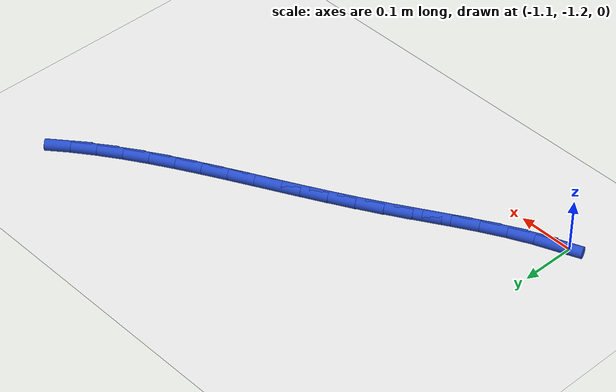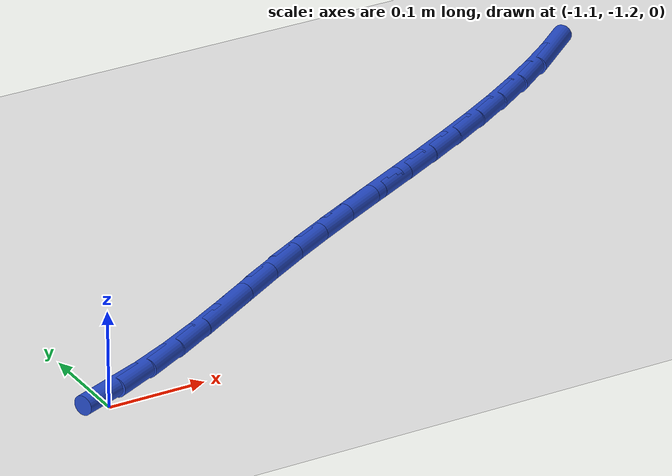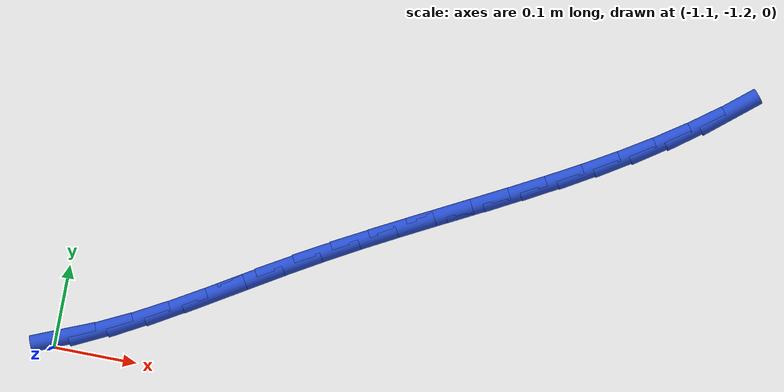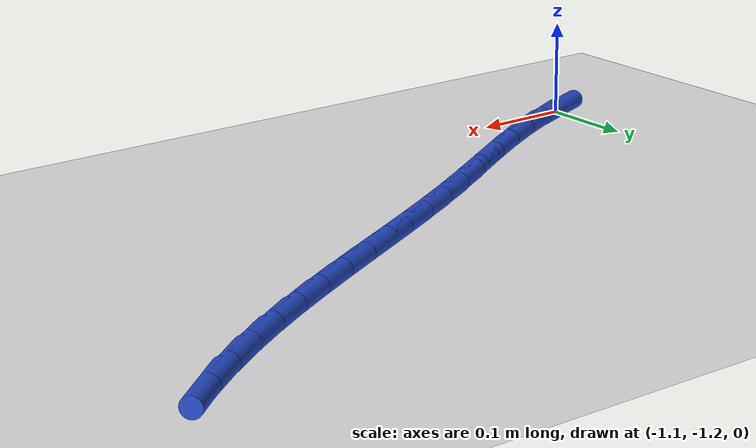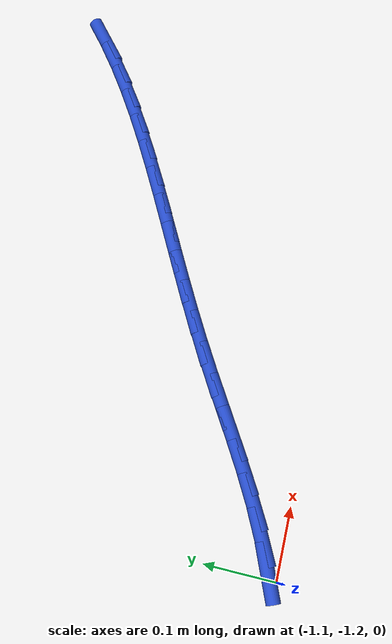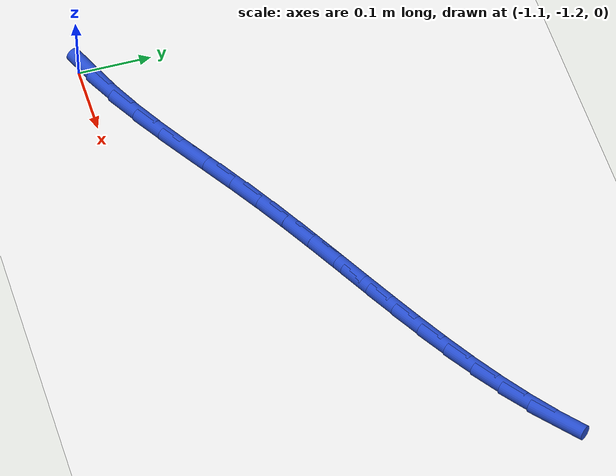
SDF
<sdf version="1.6">
 <world name="default">
  <model name="ground_plane">
   <static>1</static>
   <link name="link">
    <collision name="collision">
     <geometry><plane><normal>0 0 1</normal><size>100 100</size></plane></geometry>
     <surface><friction><ode><mu>100</mu><mu2>50</mu2></ode></friction></surface>
    </collision>
    <visual name="visual">
     <cast_shadows>0</cast_shadows>
     <geometry><plane><normal>0 0 1</normal><size>100 100</size></plane></geometry>
     <material>
      <script><uri>file://media/materials/scripts/gazebo.material</uri><name>Gazebo/WhiteGlow</name></script>
     </material>
    </visual>
   </link>
  </model>
  <model name="line">
   <link name="link_113">
    <pose>-1.090694415334321 -1.1853723945374448 0.01 0 1.57 0.39405737832902943</pose>
    <collision name="collision">
     <geometry><cylinder><radius>0.01</radius><length>0.08</length></cylinder></geometry>
    </collision>
    <visual name="visual">
     <material>
      <script><name>Gazebo/Blue</name><uri>file://media/materials/scripts/gazebo.material</uri></script>
     </material>
     <geometry><cylinder><radius>0.01</radius><length>0.08</length></cylinder></geometry>
    </visual>
   </link>
   <link name="link_114">
    <pose>-1.0486051799602574 -1.1678714462387578 0.01 0 1.57 0.45896109990665773</pose>
    <collision name="collision">
     <geometry><cylinder><radius>0.01</radius><length>0.08</length></cylinder></geometry>
    </collision>
    <visual name="visual">
     <material>
      <script><name>Gazebo/Blue</name><uri>file://media/materials/scripts/gazebo.material</uri></script>
     </material>
     <geometry><cylinder><radius>0.01</radius><length>0.08</length></cylinder></geometry>
    </visual>
   </link>
   <link name="link_115">
    <pose>-1.0071022157232068 -1.1473625275324169 0.01 0 1.57 0.5058704895064697</pose>
    <collision name="collision">
     <geometry><cylinder><radius>0.01</radius><length>0.08</length></cylinder></geometry>
    </collision>
    <visual name="visual">
     <material>
      <script><name>Gazebo/Blue</name><uri>file://media/materials/scripts/gazebo.material</uri></script>
     </material>
     <geometry><cylinder><radius>0.01</radius><length>0.08</length></cylinder></geometry>
    </visual>
   </link>
   <link name="link_116">
    <pose>-0.9660180517474906 -1.1246039705699706 0.01 0 1.57 0.5359084208939121</pose>
    <collision name="collision">
     <geometry><cylinder><radius>0.01</radius><length>0.08</length></cylinder></geometry>
    </collision>
    <visual name="visual">
     <material>
      <script><name>Gazebo/Blue</name><uri>file://media/materials/scripts/gazebo.material</uri></script>
     </material>
     <geometry><cylinder><radius>0.01</radius><length>0.08</length></cylinder></geometry>
    </visual>
   </link>
   <link name="link_117">
    <pose>-0.9251852171574281 -1.1003541075029657 0.01 0 1.57 0.5499897861451731</pose>
    <collision name="collision">
     <geometry><cylinder><radius>0.01</radius><length>0.08</length></cylinder></geometry>
    </collision>
    <visual name="visual">
     <material>
      <script><name>Gazebo/Blue</name><uri>file://media/materials/scripts/gazebo.material</uri></script>
     </material>
     <geometry><cylinder><radius>0.01</radius><length>0.08</length></cylinder></geometry>
    </visual>
   </link>
   <link name="link_118">
    <pose>-0.884436241077338 -1.0753712704829486 0.01 0 1.57 0.54862483034578</pose>
    <collision name="collision">
     <geometry><cylinder><radius>0.01</radius><length>0.08</length></cylinder></geometry>
    </collision>
    <visual name="visual">
     <material>
      <script><name>Gazebo/Blue</name><uri>file://media/materials/scripts/gazebo.material</uri></script>
     </material>
     <geometry><cylinder><radius>0.01</radius><length>0.08</length></cylinder></geometry>
    </visual>
   </link>
   <link name="link_119">
    <pose>-0.8436036526315418 -1.0504137916614675 0.01 0 1.57 0.5323051269598071</pose>
    <collision name="collision">
     <geometry><cylinder><radius>0.01</radius><length>0.08</length></cylinder></geometry>
    </collision>
    <visual name="visual">
     <material>
      <script><name>Gazebo/Blue</name><uri>file://media/materials/scripts/gazebo.material</uri></script>
     </material>
     <geometry><cylinder><radius>0.01</radius><length>0.08</length></cylinder></geometry>
    </visual>
   </link>
   <link name="link_120">
    <pose>-0.8025264560974156 -1.026218596656137 0.01 0 1.57 0.5111747070586709</pose>
    <collision name="collision">
     <geometry><cylinder><radius>0.01</radius><length>0.08</length></cylinder></geometry>
    </collision>
    <visual name="visual">
     <material>
      <script><name>Gazebo/Blue</name><uri>file://media/materials/scripts/gazebo.material</uri></script>
     </material>
     <geometry><cylinder><radius>0.01</radius><length>0.08</length></cylinder></geometry>
    </visual>
   </link>
   <link name="link_121">
    <pose>-0.7611915278043958 -1.0030337534357032 0.01 0 1.57 0.4956142159977359</pose>
    <collision name="collision">
     <geometry><cylinder><radius>0.01</radius><length>0.08</length></cylinder></geometry>
    </collision>
    <visual name="visual">
     <material>
      <script><name>Gazebo/Blue</name><uri>file://media/materials/scripts/gazebo.material</uri></script>
     </material>
     <geometry><cylinder><radius>0.01</radius><length>0.08</length></cylinder></geometry>
    </visual>
   </link>
   <link name="link_122">
    <pose>-0.7197330315776892 -0.9806204048340544 0.01 0 1.57 0.48618446569848933</pose>
    <collision name="collision">
     <geometry><cylinder><radius>0.01</radius><length>0.08</length></cylinder></geometry>
    </collision>
    <visual name="visual">
     <material>
      <script><name>Gazebo/Blue</name><uri>file://media/materials/scripts/gazebo.material</uri></script>
     </material>
     <geometry><cylinder><radius>0.01</radius><length>0.08</length></cylinder></geometry>
    </visual>
   </link>
   <link name="link_123">
    <pose>-0.6782914894837251 -0.9587186736558508 0.01 0 1.57 0.4829884355597028</pose>
    <collision name="collision">
     <geometry><cylinder><radius>0.01</radius><length>0.08</length></cylinder></geometry>
    </collision>
    <visual name="visual">
     <material>
      <script><name>Gazebo/Blue</name><uri>file://media/materials/scripts/gazebo.material</uri></script>
     </material>
     <geometry><cylinder><radius>0.01</radius><length>0.08</length></cylinder></geometry>
    </visual>
   </link>
   <link name="link_124">
    <pose>-0.637007423588935 -0.9370686827057529 0.01 0 1.57 0.4861294163148471</pose>
    <collision name="collision">
     <geometry><cylinder><radius>0.01</radius><length>0.08</length></cylinder></geometry>
    </collision>
    <visual name="visual">
     <material>
      <script><name>Gazebo/Blue</name><uri>file://media/materials/scripts/gazebo.material</uri></script>
     </material>
     <geometry><cylinder><radius>0.01</radius><length>0.08</length></cylinder></geometry>
    </visual>
   </link>
   <link name="link_125">
    <pose>-0.596021355959751 -0.9154105547884213 0.01 0 1.57 0.49571482282174584</pose>
    <collision name="collision">
     <geometry><cylinder><radius>0.01</radius><length>0.08</length></cylinder></geometry>
    </collision>
    <visual name="visual">
     <material>
      <script><name>Gazebo/Blue</name><uri>file://media/materials/scripts/gazebo.material</uri></script>
     </material>
     <geometry><cylinder><radius>0.01</radius><length>0.08</length></cylinder></geometry>
    </visual>
   </link>
   <link name="link_126">
    <pose>-0.5554738086626025 -0.8934844127085156 0.01 0 1.57 0.511852366081266</pose>
    <collision name="collision">
     <geometry><cylinder><radius>0.01</radius><length>0.08</length></cylinder></geometry>
    </collision>
    <visual name="visual">
     <material>
      <script><name>Gazebo/Blue</name><uri>file://media/materials/scripts/gazebo.material</uri></script>
     </material>
     <geometry><cylinder><radius>0.01</radius><length>0.08</length></cylinder></geometry>
    </visual>
   </link>
   <link name="link_127">
    <pose>-0.5155053037639219 -0.8710303792706966 0.01 0 1.57 0.534637669295042</pose>
    <collision name="collision">
     <geometry><cylinder><radius>0.01</radius><length>0.08</length></cylinder></geometry>
    </collision>
    <visual name="visual">
     <material>
      <script><name>Gazebo/Blue</name><uri>file://media/materials/scripts/gazebo.material</uri></script>
     </material>
     <geometry><cylinder><radius>0.01</radius><length>0.08</length></cylinder></geometry>
    </visual>
   </link>
   <link name="link_128">
    <pose>-0.47625636333013854 -0.8477885772796239 0.01 0 1.57 0.5641324936252771</pose>
    <collision name="collision">
     <geometry><cylinder><radius>0.01</radius><length>0.08</length></cylinder></geometry>
    </collision>
    <visual name="visual">
     <material>
      <script><name>Gazebo/Blue</name><uri>file://media/materials/scripts/gazebo.material</uri></script>
     </material>
     <geometry><cylinder><radius>0.01</radius><length>0.08</length></cylinder></geometry>
    </visual>
   </link>
   <link name="link_129">
    <pose>-0.43786750942768454 -0.8234991295399582 0.01 0 1.57 0.6003332576618119</pose>
    <collision name="collision">
     <geometry><cylinder><radius>0.01</radius><length>0.08</length></cylinder></geometry>
    </collision>
    <visual name="visual">
     <material>
      <script><name>Gazebo/Blue</name><uri>file://media/materials/scripts/gazebo.material</uri></script>
     </material>
     <geometry><cylinder><radius>0.01</radius><length>0.08</length></cylinder></geometry>
    </visual>
   </link>
   <link name="link_130">
    <pose>-0.4004792641229913 -0.7979021588563602 0.01 0 1.57 0.6431308330758836</pose>
    <collision name="collision">
     <geometry><cylinder><radius>0.01</radius><length>0.08</length></cylinder></geometry>
    </collision>
    <visual name="visual">
     <material>
      <script><name>Gazebo/Blue</name><uri>file://media/materials/scripts/gazebo.material</uri></script>
     </material>
     <geometry><cylinder><radius>0.01</radius><length>0.08</length></cylinder></geometry>
    </visual>
   </link>
   <link name="link_131">
    <pose>-0.3642321494824887 -0.7707377880334892 0.01 0 1.57 0.6922648042252348</pose>
    <collision name="collision">
     <geometry><cylinder><radius>0.01</radius><length>0.08</length></cylinder></geometry>
    </collision>
    <visual name="visual">
     <material>
      <script><name>Gazebo/Blue</name><uri>file://media/materials/scripts/gazebo.material</uri></script>
     </material>
     <geometry><cylinder><radius>0.01</radius><length>0.08</length></cylinder></geometry>
    </visual>
   </link>
  </model>
 </world>
</sdf>
